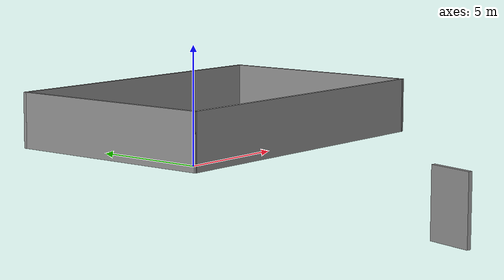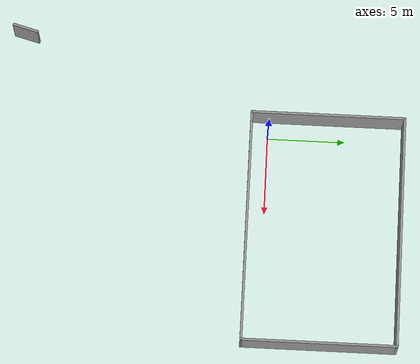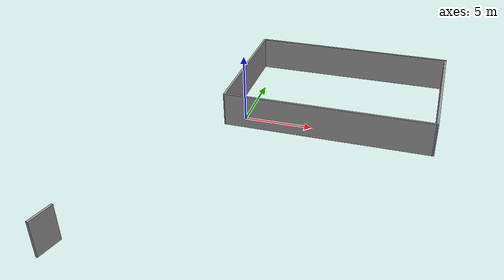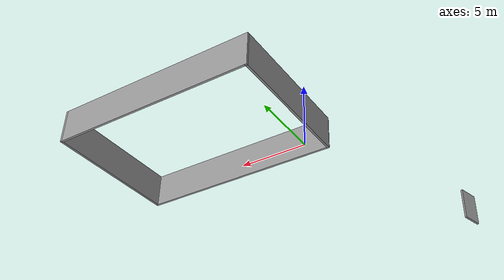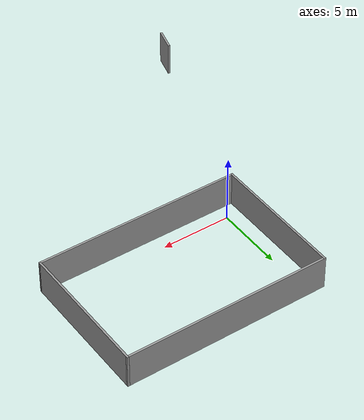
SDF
<?xml version='1.0'?>
<sdf version='1.7'>
  <model name='Untitled'>
    <pose>3.72259 -4.0111 0 0 -0 0</pose>
    <link name='Wall_1'>
      <collision name='Wall_1_Collision'>
        <geometry>
          <box>
            <size>1.69327 0.15 2.5</size>
          </box>
        </geometry>
        <pose>0 0 1.25 0 -0 0</pose>
      </collision>
      <visual name='Wall_1_Visual'>
        <pose>0 0 1.25 0 -0 0</pose>
        <geometry>
          <box>
            <size>1.69327 0.15 2.5</size>
          </box>
        </geometry>
        <material>
          <script>
            <uri>file://media/materials/scripts/gazebo.material</uri>
            <name>Gazebo/Grey</name>
          </script>
          <ambient>1 1 1 1</ambient>
        </material>
        <meta>
          <layer>0</layer>
        </meta>
      </visual>
      <pose>-9.75275 -11.9709 0 0 -0 -1.83177</pose>
    </link>
    <link name='Wall_10'>
      <collision name='Wall_10_Collision'>
        <geometry>
          <box>
            <size>15 0.15 2.5</size>
          </box>
        </geometry>
        <pose>0 0 1.25 0 -0 0</pose>
      </collision>
      <visual name='Wall_10_Visual'>
        <pose>0 0 1.25 0 -0 0</pose>
        <geometry>
          <box>
            <size>15 0.15 2.5</size>
          </box>
        </geometry>
        <material>
          <script>
            <uri>file://media/materials/scripts/gazebo.material</uri>
            <name>Gazebo/Grey</name>
          </script>
          <ambient>1 1 1 1</ambient>
        </material>
        <meta>
          <layer>0</layer>
        </meta>
      </visual>
      <pose>2.54351 12.7332 0 0 -0 3.14159</pose>
    </link>
    <link name='Wall_11'>
      <collision name='Wall_11_Collision'>
        <geometry>
          <box>
            <size>9.96855 0.15 2.5</size>
          </box>
        </geometry>
        <pose>0 0 1.25 0 -0 0</pose>
      </collision>
      <visual name='Wall_11_Visual'>
        <pose>0 0 1.25 0 -0 0</pose>
        <geometry>
          <box>
            <size>9.96855 0.15 2.5</size>
          </box>
        </geometry>
        <material>
          <script>
            <uri>file://media/materials/scripts/gazebo.material</uri>
            <name>Gazebo/Grey</name>
          </script>
          <ambient>1 1 1 1</ambient>
        </material>
        <meta>
          <layer>0</layer>
        </meta>
      </visual>
      <pose>-4.88149 7.82393 0 0 -0 -1.5708</pose>
    </link>
    <link name='Wall_5'>
      <collision name='Wall_5_Collision'>
        <geometry>
          <box>
            <size>15 0.15 2.5</size>
          </box>
        </geometry>
        <pose>0 0 1.25 0 -0 0</pose>
      </collision>
      <visual name='Wall_5_Visual'>
        <pose>0 0 1.25 0 -0 0</pose>
        <geometry>
          <box>
            <size>15 0.15 2.5</size>
          </box>
        </geometry>
        <material>
          <script>
            <uri>file://media/materials/scripts/gazebo.material</uri>
            <name>Gazebo/Grey</name>
          </script>
          <ambient>1 1 1 1</ambient>
        </material>
        <meta>
          <layer>0</layer>
        </meta>
      </visual>
      <pose>2.54351 2.89893 0 0 -0 -0.002118</pose>
    </link>
    <link name='Wall_9'>
      <collision name='Wall_9_Collision'>
        <geometry>
          <box>
            <size>10 0.15 2.5</size>
          </box>
        </geometry>
        <pose>0 0 1.25 0 -0 0</pose>
      </collision>
      <visual name='Wall_9_Visual'>
        <pose>0 0 1.25 0 -0 0</pose>
        <geometry>
          <box>
            <size>10 0.15 2.5</size>
          </box>
        </geometry>
        <material>
          <script>
            <uri>file://media/materials/scripts/gazebo.material</uri>
            <name>Gazebo/Grey</name>
          </script>
          <ambient>1 1 1 1</ambient>
        </material>
        <meta>
          <layer>0</layer>
        </meta>
      </visual>
      <pose>9.96851 7.80821 0 0 -0 1.5708</pose>
    </link>
    <static>1</static>
  </model>
</sdf>
